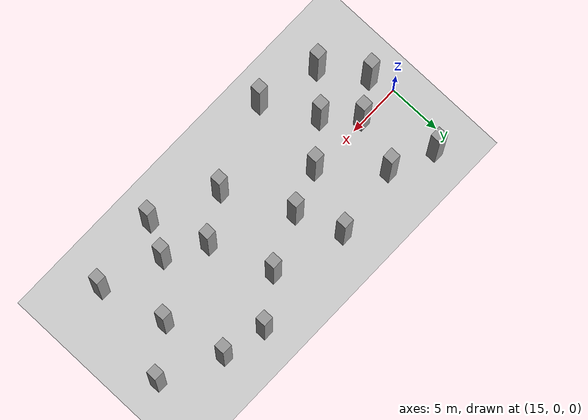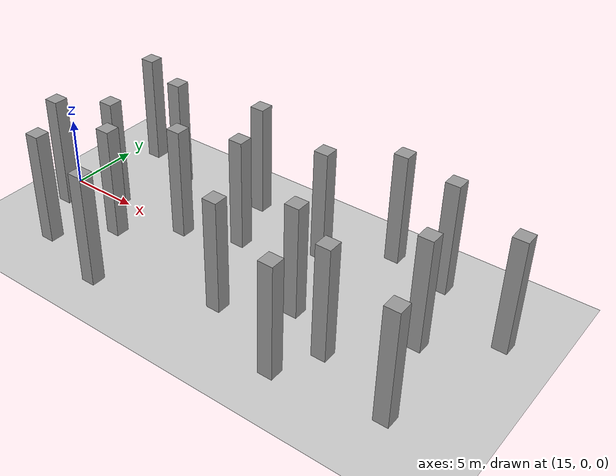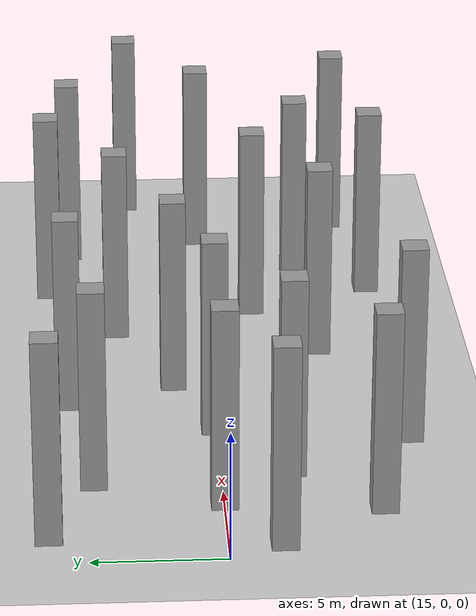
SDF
<sdf version="1.7">
 <world name="default">
  <model name="ground_plane">
   <static>1</static>
   <link name="link">
    <collision name="collision">
     <geometry><plane><normal>0 0 1</normal><size>100 100</size></plane></geometry>
     <surface>
      <contact><collide_bitmask>65535</collide_bitmask></contact>
      <friction><ode><mu>100</mu><mu2>50</mu2></ode></friction>
     </surface>
    </collision>
    <visual name="visual">
     <cast_shadows>0</cast_shadows>
     <geometry><plane><normal>0 0 1</normal><size>100 100</size></plane></geometry>
     <material>
      <script><uri>file://media/materials/scripts/gazebo.material</uri><name>Gazebo/Grey</name></script>
     </material>
    </visual>
   </link>
  </model>
  <model name="unit_box_static42_clone_35">
   <link name="link">
    <inertial>
     <mass>1</mass>
     <inertia>
      <ixx>0.166667</ixx>
      <ixy>0</ixy>
      <ixz>0</ixz>
      <iyy>0.166667</iyy>
      <iyz>0</iyz>
      <izz>0.166667</izz>
     </inertia>
    </inertial>
    <visual name="visual">
     <geometry><box><size>1 1 8</size></box></geometry>
     <material>
      <script><name>Gazebo/Grey</name><uri>file://media/materials/scripts/gazebo.material</uri></script>
      <shader type="pixel"/>
     </material>
    </visual>
    <collision name="collision">
     <geometry><box><size>1 1 8</size></box></geometry>
     <surface>
      <friction>
       <ode><mu>1</mu><mu2>1</mu2><fdir1>0 0 0</fdir1><slip1>0</slip1><slip2>0</slip2></ode>
       <torsional>
        <coefficient>1</coefficient>
        <patch_radius>0</patch_radius>
        <surface_radius>0</surface_radius>
        <use_patch_radius>1</use_patch_radius>
        <ode><slip>0</slip></ode>
       </torsional>
      </friction>
      <bounce><restitution_coefficient>0</restitution_coefficient><threshold>1e+06</threshold></bounce>
      <contact>
       <collide_without_contact>0</collide_without_contact>
       <collide_without_contact_bitmask>1</collide_without_contact_bitmask>
       <collide_bitmask>1</collide_bitmask>
       <ode>
        <soft_cfm>0</soft_cfm>
        <soft_erp>0.2</soft_erp>
        <kp>1e+13</kp>
        <kd>1</kd>
        <max_vel>0.01</max_vel>
        <min_depth>0</min_depth>
       </ode>
       <bullet>
        <split_impulse>1</split_impulse>
        <split_impulse_penetration_threshold>-0.01</split_impulse_penetration_threshold>
        <soft_cfm>0</soft_cfm>
        <soft_erp>0.2</soft_erp>
        <kp>1e+13</kp>
        <kd>1</kd>
       </bullet>
      </contact>
     </surface>
    </collision>
   </link>
   <static>1</static>
   <pose>34 3.66737 4 0 -0 0</pose>
  </model>
  <model name="unit_box_static42_clone_35_clone">
   <link name="link">
    <inertial>
     <mass>1</mass>
     <inertia>
      <ixx>0.166667</ixx>
      <ixy>0</ixy>
      <ixz>0</ixz>
      <iyy>0.166667</iyy>
      <iyz>0</iyz>
      <izz>0.166667</izz>
     </inertia>
    </inertial>
    <visual name="visual">
     <geometry><box><size>1 1 8</size></box></geometry>
     <material>
      <script><name>Gazebo/Grey</name><uri>file://media/materials/scripts/gazebo.material</uri></script>
      <shader type="pixel"/>
     </material>
    </visual>
    <collision name="collision">
     <geometry><box><size>1 1 8</size></box></geometry>
     <surface>
      <friction>
       <ode><mu>1</mu><mu2>1</mu2><fdir1>0 0 0</fdir1><slip1>0</slip1><slip2>0</slip2></ode>
       <torsional>
        <coefficient>1</coefficient>
        <patch_radius>0</patch_radius>
        <surface_radius>0</surface_radius>
        <use_patch_radius>1</use_patch_radius>
        <ode><slip>0</slip></ode>
       </torsional>
      </friction>
      <bounce><restitution_coefficient>0</restitution_coefficient><threshold>1e+06</threshold></bounce>
      <contact>
       <collide_without_contact>0</collide_without_contact>
       <collide_without_contact_bitmask>1</collide_without_contact_bitmask>
       <collide_bitmask>1</collide_bitmask>
       <ode>
        <soft_cfm>0</soft_cfm>
        <soft_erp>0.2</soft_erp>
        <kp>1e+13</kp>
        <kd>1</kd>
        <max_vel>0.01</max_vel>
        <min_depth>0</min_depth>
       </ode>
       <bullet>
        <split_impulse>1</split_impulse>
        <split_impulse_penetration_threshold>-0.01</split_impulse_penetration_threshold>
        <soft_cfm>0</soft_cfm>
        <soft_erp>0.2</soft_erp>
        <kp>1e+13</kp>
        <kd>1</kd>
       </bullet>
      </contact>
     </surface>
    </collision>
   </link>
   <static>1</static>
   <pose>43.4038 0 4 0 -0 0</pose>
  </model>
  <model name="unit_box_static42_clone_35_clone_3">
   <link name="link">
    <inertial>
     <mass>1</mass>
     <inertia>
      <ixx>0.166667</ixx>
      <ixy>0</ixy>
      <ixz>0</ixz>
      <iyy>0.166667</iyy>
      <iyz>0</iyz>
      <izz>0.166667</izz>
     </inertia>
    </inertial>
    <visual name="visual">
     <geometry><box><size>1 1 8</size></box></geometry>
     <material>
      <script><name>Gazebo/Grey</name><uri>file://media/materials/scripts/gazebo.material</uri></script>
      <shader type="pixel"/>
     </material>
    </visual>
    <collision name="collision">
     <geometry><box><size>1 1 8</size></box></geometry>
     <surface>
      <friction>
       <ode><mu>1</mu><mu2>1</mu2><fdir1>0 0 0</fdir1><slip1>0</slip1><slip2>0</slip2></ode>
       <torsional>
        <coefficient>1</coefficient>
        <patch_radius>0</patch_radius>
        <surface_radius>0</surface_radius>
        <use_patch_radius>1</use_patch_radius>
        <ode><slip>0</slip></ode>
       </torsional>
      </friction>
      <bounce><restitution_coefficient>0</restitution_coefficient><threshold>1e+06</threshold></bounce>
      <contact>
       <collide_without_contact>0</collide_without_contact>
       <collide_without_contact_bitmask>1</collide_without_contact_bitmask>
       <collide_bitmask>1</collide_bitmask>
       <ode>
        <soft_cfm>0</soft_cfm>
        <soft_erp>0.2</soft_erp>
        <kp>1e+13</kp>
        <kd>1</kd>
        <max_vel>0.01</max_vel>
        <min_depth>0</min_depth>
       </ode>
       <bullet>
        <split_impulse>1</split_impulse>
        <split_impulse_penetration_threshold>-0.01</split_impulse_penetration_threshold>
        <soft_cfm>0</soft_cfm>
        <soft_erp>0.2</soft_erp>
        <kp>1e+13</kp>
        <kd>1</kd>
       </bullet>
      </contact>
     </surface>
    </collision>
   </link>
   <static>1</static>
   <pose>29 1.50785 4 0 -0 0</pose>
  </model>
  <model name="unit_box_static42_clone_35_clone_4">
   <link name="link">
    <inertial>
     <mass>1</mass>
     <inertia>
      <ixx>0.166667</ixx>
      <ixy>0</ixy>
      <ixz>0</ixz>
      <iyy>0.166667</iyy>
      <iyz>0</iyz>
      <izz>0.166667</izz>
     </inertia>
    </inertial>
    <visual name="visual">
     <geometry><box><size>1 1 8</size></box></geometry>
     <material>
      <script><name>Gazebo/Grey</name><uri>file://media/materials/scripts/gazebo.material</uri></script>
      <shader type="pixel"/>
     </material>
    </visual>
    <collision name="collision">
     <geometry><box><size>1 1 8</size></box></geometry>
     <surface>
      <friction>
       <ode><mu>1</mu><mu2>1</mu2><fdir1>0 0 0</fdir1><slip1>0</slip1><slip2>0</slip2></ode>
       <torsional>
        <coefficient>1</coefficient>
        <patch_radius>0</patch_radius>
        <surface_radius>0</surface_radius>
        <use_patch_radius>1</use_patch_radius>
        <ode><slip>0</slip></ode>
       </torsional>
      </friction>
      <bounce><restitution_coefficient>0</restitution_coefficient><threshold>1e+06</threshold></bounce>
      <contact>
       <collide_without_contact>0</collide_without_contact>
       <collide_without_contact_bitmask>1</collide_without_contact_bitmask>
       <collide_bitmask>1</collide_bitmask>
       <ode>
        <soft_cfm>0</soft_cfm>
        <soft_erp>0.2</soft_erp>
        <kp>1e+13</kp>
        <kd>1</kd>
        <max_vel>0.01</max_vel>
        <min_depth>0</min_depth>
       </ode>
       <bullet>
        <split_impulse>1</split_impulse>
        <split_impulse_penetration_threshold>-0.01</split_impulse_penetration_threshold>
        <soft_cfm>0</soft_cfm>
        <soft_erp>0.2</soft_erp>
        <kp>1e+13</kp>
        <kd>1</kd>
       </bullet>
      </contact>
     </surface>
    </collision>
   </link>
   <static>1</static>
   <pose>20.8184 4.75792 4 0 -0 0</pose>
  </model>
  <model name="unit_box_static42_clone_35_clone_5">
   <link name="link">
    <inertial>
     <mass>1</mass>
     <inertia>
      <ixx>0.166667</ixx>
      <ixy>0</ixy>
      <ixz>0</ixz>
      <iyy>0.166667</iyy>
      <iyz>0</iyz>
      <izz>0.166667</izz>
     </inertia>
    </inertial>
    <visual name="visual">
     <geometry><box><size>1 1 8</size></box></geometry>
     <material>
      <script><name>Gazebo/Grey</name><uri>file://media/materials/scripts/gazebo.material</uri></script>
      <shader type="pixel"/>
     </material>
    </visual>
    <collision name="collision">
     <geometry><box><size>1 1 8</size></box></geometry>
     <surface>
      <friction>
       <ode><mu>1</mu><mu2>1</mu2><fdir1>0 0 0</fdir1><slip1>0</slip1><slip2>0</slip2></ode>
       <torsional>
        <coefficient>1</coefficient>
        <patch_radius>0</patch_radius>
        <surface_radius>0</surface_radius>
        <use_patch_radius>1</use_patch_radius>
        <ode><slip>0</slip></ode>
       </torsional>
      </friction>
      <bounce><restitution_coefficient>0</restitution_coefficient><threshold>1e+06</threshold></bounce>
      <contact>
       <collide_without_contact>0</collide_without_contact>
       <collide_without_contact_bitmask>1</collide_without_contact_bitmask>
       <collide_bitmask>1</collide_bitmask>
       <ode>
        <soft_cfm>0</soft_cfm>
        <soft_erp>0.2</soft_erp>
        <kp>1e+13</kp>
        <kd>1</kd>
        <max_vel>0.01</max_vel>
        <min_depth>0</min_depth>
       </ode>
       <bullet>
        <split_impulse>1</split_impulse>
        <split_impulse_penetration_threshold>-0.01</split_impulse_penetration_threshold>
        <soft_cfm>0</soft_cfm>
        <soft_erp>0.2</soft_erp>
        <kp>1e+13</kp>
        <kd>1</kd>
       </bullet>
      </contact>
     </surface>
    </collision>
   </link>
   <static>1</static>
   <pose>27.4567 5.65529 4 0 -0 0</pose>
  </model>
  <model name="unit_box_static42_clone_35_clone_6">
   <link name="link">
    <inertial>
     <mass>1</mass>
     <inertia>
      <ixx>0.166667</ixx>
      <ixy>0</ixy>
      <ixz>0</ixz>
      <iyy>0.166667</iyy>
      <iyz>0</iyz>
      <izz>0.166667</izz>
     </inertia>
    </inertial>
    <visual name="visual">
     <geometry><box><size>1 1 8</size></box></geometry>
     <material>
      <script><name>Gazebo/Grey</name><uri>file://media/materials/scripts/gazebo.material</uri></script>
      <shader type="pixel"/>
     </material>
    </visual>
    <collision name="collision">
     <geometry><box><size>1 1 8</size></box></geometry>
     <surface>
      <friction>
       <ode><mu>1</mu><mu2>1</mu2><fdir1>0 0 0</fdir1><slip1>0</slip1><slip2>0</slip2></ode>
       <torsional>
        <coefficient>1</coefficient>
        <patch_radius>0</patch_radius>
        <surface_radius>0</surface_radius>
        <use_patch_radius>1</use_patch_radius>
        <ode><slip>0</slip></ode>
       </torsional>
      </friction>
      <bounce><restitution_coefficient>0</restitution_coefficient><threshold>1e+06</threshold></bounce>
      <contact>
       <collide_without_contact>0</collide_without_contact>
       <collide_without_contact_bitmask>1</collide_without_contact_bitmask>
       <collide_bitmask>1</collide_bitmask>
       <ode>
        <soft_cfm>0</soft_cfm>
        <soft_erp>0.2</soft_erp>
        <kp>1e+13</kp>
        <kd>1</kd>
        <max_vel>0.01</max_vel>
        <min_depth>0</min_depth>
       </ode>
       <bullet>
        <split_impulse>1</split_impulse>
        <split_impulse_penetration_threshold>-0.01</split_impulse_penetration_threshold>
        <soft_cfm>0</soft_cfm>
        <soft_erp>0.2</soft_erp>
        <kp>1e+13</kp>
        <kd>1</kd>
       </bullet>
      </contact>
     </surface>
    </collision>
   </link>
   <static>1</static>
   <pose>25.0852 0.07012 4 0 -0 0</pose>
  </model>
  <model name="unit_box_static42_clone_35_clone_7">
   <link name="link">
    <inertial>
     <mass>1</mass>
     <inertia>
      <ixx>0.166667</ixx>
      <ixy>0</ixy>
      <ixz>0</ixz>
      <iyy>0.166667</iyy>
      <iyz>0</iyz>
      <izz>0.166667</izz>
     </inertia>
    </inertial>
    <visual name="visual">
     <geometry><box><size>1 1 8</size></box></geometry>
     <material>
      <script><name>Gazebo/Grey</name><uri>file://media/materials/scripts/gazebo.material</uri></script>
      <shader type="pixel"/>
     </material>
    </visual>
    <collision name="collision">
     <geometry><box><size>1 1 8</size></box></geometry>
     <surface>
      <friction>
       <ode><mu>1</mu><mu2>1</mu2><fdir1>0 0 0</fdir1><slip1>0</slip1><slip2>0</slip2></ode>
       <torsional>
        <coefficient>1</coefficient>
        <patch_radius>0</patch_radius>
        <surface_radius>0</surface_radius>
        <use_patch_radius>1</use_patch_radius>
        <ode><slip>0</slip></ode>
       </torsional>
      </friction>
      <bounce><restitution_coefficient>0</restitution_coefficient><threshold>1e+06</threshold></bounce>
      <contact>
       <collide_without_contact>0</collide_without_contact>
       <collide_without_contact_bitmask>1</collide_without_contact_bitmask>
       <collide_bitmask>1</collide_bitmask>
       <ode>
        <soft_cfm>0</soft_cfm>
        <soft_erp>0.2</soft_erp>
        <kp>1e+13</kp>
        <kd>1</kd>
        <max_vel>0.01</max_vel>
        <min_depth>0</min_depth>
       </ode>
       <bullet>
        <split_impulse>1</split_impulse>
        <split_impulse_penetration_threshold>-0.01</split_impulse_penetration_threshold>
        <soft_cfm>0</soft_cfm>
        <soft_erp>0.2</soft_erp>
        <kp>1e+13</kp>
        <kd>1</kd>
       </bullet>
      </contact>
     </surface>
    </collision>
   </link>
   <static>1</static>
   <pose>32 -4.45157 4 0 -0 0</pose>
  </model>
  <model name="unit_box_static42_clone_35_clone_8">
   <link name="link">
    <inertial>
     <mass>1</mass>
     <inertia>
      <ixx>0.166667</ixx>
      <ixy>0</ixy>
      <ixz>0</ixz>
      <iyy>0.166667</iyy>
      <iyz>0</iyz>
      <izz>0.166667</izz>
     </inertia>
    </inertial>
    <visual name="visual">
     <geometry><box><size>1 1 8</size></box></geometry>
     <material>
      <script><name>Gazebo/Grey</name><uri>file://media/materials/scripts/gazebo.material</uri></script>
      <shader type="pixel"/>
     </material>
    </visual>
    <collision name="collision">
     <geometry><box><size>1 1 8</size></box></geometry>
     <surface>
      <friction>
       <ode><mu>1</mu><mu2>1</mu2><fdir1>0 0 0</fdir1><slip1>0</slip1><slip2>0</slip2></ode>
       <torsional>
        <coefficient>1</coefficient>
        <patch_radius>0</patch_radius>
        <surface_radius>0</surface_radius>
        <use_patch_radius>1</use_patch_radius>
        <ode><slip>0</slip></ode>
       </torsional>
      </friction>
      <bounce><restitution_coefficient>0</restitution_coefficient><threshold>1e+06</threshold></bounce>
      <contact>
       <collide_without_contact>0</collide_without_contact>
       <collide_without_contact_bitmask>1</collide_without_contact_bitmask>
       <collide_bitmask>1</collide_bitmask>
       <ode>
        <soft_cfm>0</soft_cfm>
        <soft_erp>0.2</soft_erp>
        <kp>1e+13</kp>
        <kd>1</kd>
        <max_vel>0.01</max_vel>
        <min_depth>0</min_depth>
       </ode>
       <bullet>
        <split_impulse>1</split_impulse>
        <split_impulse_penetration_threshold>-0.01</split_impulse_penetration_threshold>
        <soft_cfm>0</soft_cfm>
        <soft_erp>0.2</soft_erp>
        <kp>1e+13</kp>
        <kd>1</kd>
       </bullet>
      </contact>
     </surface>
    </collision>
   </link>
   <static>1</static>
   <pose>36 -2 4 0 -0 0</pose>
  </model>
  <model name="unit_box_static42_clone_35_clone_9">
   <link name="link">
    <inertial>
     <mass>1</mass>
     <inertia>
      <ixx>0.166667</ixx>
      <ixy>0</ixy>
      <ixz>0</ixz>
      <iyy>0.166667</iyy>
      <iyz>0</iyz>
      <izz>0.166667</izz>
     </inertia>
    </inertial>
    <visual name="visual">
     <geometry><box><size>1 1 8</size></box></geometry>
     <material>
      <script><name>Gazebo/Grey</name><uri>file://media/materials/scripts/gazebo.material</uri></script>
      <shader type="pixel"/>
     </material>
    </visual>
    <collision name="collision">
     <geometry><box><size>1 1 8</size></box></geometry>
     <surface>
      <friction>
       <ode><mu>1</mu><mu2>1</mu2><fdir1>0 0 0</fdir1><slip1>0</slip1><slip2>0</slip2></ode>
       <torsional>
        <coefficient>1</coefficient>
        <patch_radius>0</patch_radius>
        <surface_radius>0</surface_radius>
        <use_patch_radius>1</use_patch_radius>
        <ode><slip>0</slip></ode>
       </torsional>
      </friction>
      <bounce><restitution_coefficient>0</restitution_coefficient><threshold>1e+06</threshold></bounce>
      <contact>
       <collide_without_contact>0</collide_without_contact>
       <collide_without_contact_bitmask>1</collide_without_contact_bitmask>
       <collide_bitmask>1</collide_bitmask>
       <ode>
        <soft_cfm>0</soft_cfm>
        <soft_erp>0.2</soft_erp>
        <kp>1e+13</kp>
        <kd>1</kd>
        <max_vel>0.01</max_vel>
        <min_depth>0</min_depth>
       </ode>
       <bullet>
        <split_impulse>1</split_impulse>
        <split_impulse_penetration_threshold>-0.01</split_impulse_penetration_threshold>
        <soft_cfm>0</soft_cfm>
        <soft_erp>0.2</soft_erp>
        <kp>1e+13</kp>
        <kd>1</kd>
       </bullet>
      </contact>
     </surface>
    </collision>
   </link>
   <static>1</static>
   <pose>38 -7 4 0 -0 0</pose>
  </model>
  <model name="unit_box_static42_clone_35_clone_10">
   <link name="link">
    <inertial>
     <mass>1</mass>
     <inertia>
      <ixx>0.166667</ixx>
      <ixy>0</ixy>
      <ixz>0</ixz>
      <iyy>0.166667</iyy>
      <iyz>0</iyz>
      <izz>0.166667</izz>
     </inertia>
    </inertial>
    <visual name="visual">
     <geometry><box><size>1 1 8</size></box></geometry>
     <material>
      <script><name>Gazebo/Grey</name><uri>file://media/materials/scripts/gazebo.material</uri></script>
      <shader type="pixel"/>
     </material>
    </visual>
    <collision name="collision">
     <geometry><box><size>1 1 8</size></box></geometry>
     <surface>
      <friction>
       <ode><mu>1</mu><mu2>1</mu2><fdir1>0 0 0</fdir1><slip1>0</slip1><slip2>0</slip2></ode>
       <torsional>
        <coefficient>1</coefficient>
        <patch_radius>0</patch_radius>
        <surface_radius>0</surface_radius>
        <use_patch_radius>1</use_patch_radius>
        <ode><slip>0</slip></ode>
       </torsional>
      </friction>
      <bounce><restitution_coefficient>0</restitution_coefficient><threshold>1e+06</threshold></bounce>
      <contact>
       <collide_without_contact>0</collide_without_contact>
       <collide_without_contact_bitmask>1</collide_without_contact_bitmask>
       <collide_bitmask>1</collide_bitmask>
       <ode>
        <soft_cfm>0</soft_cfm>
        <soft_erp>0.2</soft_erp>
        <kp>1e+13</kp>
        <kd>1</kd>
        <max_vel>0.01</max_vel>
        <min_depth>0</min_depth>
       </ode>
       <bullet>
        <split_impulse>1</split_impulse>
        <split_impulse_penetration_threshold>-0.01</split_impulse_penetration_threshold>
        <soft_cfm>0</soft_cfm>
        <soft_erp>0.2</soft_erp>
        <kp>1e+13</kp>
        <kd>1</kd>
       </bullet>
      </contact>
     </surface>
    </collision>
   </link>
   <static>1</static>
   <pose>18.5122 -5.82214 4 0 -0 0</pose>
  </model>
  <model name="unit_box_static42_clone_35_clone_13">
   <link name="link">
    <inertial>
     <mass>1</mass>
     <inertia>
      <ixx>0.166667</ixx>
      <ixy>0</ixy>
      <ixz>0</ixz>
      <iyy>0.166667</iyy>
      <iyz>0</iyz>
      <izz>0.166667</izz>
     </inertia>
    </inertial>
    <visual name="visual">
     <geometry><box><size>1 1 8</size></box></geometry>
     <material>
      <script><name>Gazebo/Grey</name><uri>file://media/materials/scripts/gazebo.material</uri></script>
      <shader type="pixel"/>
     </material>
    </visual>
    <collision name="collision">
     <geometry><box><size>1 1 8</size></box></geometry>
     <surface>
      <friction>
       <ode><mu>1</mu><mu2>1</mu2><fdir1>0 0 0</fdir1><slip1>0</slip1><slip2>0</slip2></ode>
       <torsional>
        <coefficient>1</coefficient>
        <patch_radius>0</patch_radius>
        <surface_radius>0</surface_radius>
        <use_patch_radius>1</use_patch_radius>
        <ode><slip>0</slip></ode>
       </torsional>
      </friction>
      <bounce><restitution_coefficient>0</restitution_coefficient><threshold>1e+06</threshold></bounce>
      <contact>
       <collide_without_contact>0</collide_without_contact>
       <collide_without_contact_bitmask>1</collide_without_contact_bitmask>
       <collide_bitmask>1</collide_bitmask>
       <ode>
        <soft_cfm>0</soft_cfm>
        <soft_erp>0.2</soft_erp>
        <kp>1e+13</kp>
        <kd>1</kd>
        <max_vel>0.01</max_vel>
        <min_depth>0</min_depth>
       </ode>
       <bullet>
        <split_impulse>1</split_impulse>
        <split_impulse_penetration_threshold>-0.01</split_impulse_penetration_threshold>
        <soft_cfm>0</soft_cfm>
        <soft_erp>0.2</soft_erp>
        <kp>1e+13</kp>
        <kd>1</kd>
       </bullet>
      </contact>
     </surface>
    </collision>
   </link>
   <static>1</static>
   <pose>19.096 0 4 0 -0 0</pose>
  </model>
  <model name="unit_box_static42_clone_35_clone_47">
   <link name="link">
    <inertial>
     <mass>1</mass>
     <inertia>
      <ixx>0.166667</ixx>
      <ixy>0</ixy>
      <ixz>0</ixz>
      <iyy>0.166667</iyy>
      <iyz>0</iyz>
      <izz>0.166667</izz>
     </inertia>
    </inertial>
    <visual name="visual">
     <geometry><box><size>1 1 8</size></box></geometry>
     <material>
      <script><name>Gazebo/Grey</name><uri>file://media/materials/scripts/gazebo.material</uri></script>
      <shader type="pixel"/>
     </material>
    </visual>
    <collision name="collision">
     <geometry><box><size>1 1 8</size></box></geometry>
     <surface>
      <friction>
       <ode><mu>1</mu><mu2>1</mu2><fdir1>0 0 0</fdir1><slip1>0</slip1><slip2>0</slip2></ode>
       <torsional>
        <coefficient>1</coefficient>
        <patch_radius>0</patch_radius>
        <surface_radius>0</surface_radius>
        <use_patch_radius>1</use_patch_radius>
        <ode><slip>0</slip></ode>
       </torsional>
      </friction>
      <bounce><restitution_coefficient>0</restitution_coefficient><threshold>1e+06</threshold></bounce>
      <contact>
       <collide_without_contact>0</collide_without_contact>
       <collide_without_contact_bitmask>1</collide_without_contact_bitmask>
       <collide_bitmask>1</collide_bitmask>
       <ode>
        <soft_cfm>0</soft_cfm>
        <soft_erp>0.2</soft_erp>
        <kp>1e+13</kp>
        <kd>1</kd>
        <max_vel>0.01</max_vel>
        <min_depth>0</min_depth>
       </ode>
       <bullet>
        <split_impulse>1</split_impulse>
        <split_impulse_penetration_threshold>-0.01</split_impulse_penetration_threshold>
        <soft_cfm>0</soft_cfm>
        <soft_erp>0.2</soft_erp>
        <kp>1e+13</kp>
        <kd>1</kd>
       </bullet>
      </contact>
     </surface>
    </collision>
   </link>
   <static>1</static>
   <pose>24.0746 -7.35029 4 0 -0 0</pose>
  </model>
  <model name="unit_box_static42_clone_35_clone_48">
   <link name="link">
    <inertial>
     <mass>1</mass>
     <inertia>
      <ixx>0.166667</ixx>
      <ixy>0</ixy>
      <ixz>0</ixz>
      <iyy>0.166667</iyy>
      <iyz>0</iyz>
      <izz>0.166667</izz>
     </inertia>
    </inertial>
    <visual name="visual">
     <geometry><box><size>1 1 8</size></box></geometry>
     <material>
      <script><name>Gazebo/Grey</name><uri>file://media/materials/scripts/gazebo.material</uri></script>
      <shader type="pixel"/>
     </material>
    </visual>
    <collision name="collision">
     <geometry><box><size>1 1 8</size></box></geometry>
     <surface>
      <friction>
       <ode><mu>1</mu><mu2>1</mu2><fdir1>0 0 0</fdir1><slip1>0</slip1><slip2>0</slip2></ode>
       <torsional>
        <coefficient>1</coefficient>
        <patch_radius>0</patch_radius>
        <surface_radius>0</surface_radius>
        <use_patch_radius>1</use_patch_radius>
        <ode><slip>0</slip></ode>
       </torsional>
      </friction>
      <bounce><restitution_coefficient>0</restitution_coefficient><threshold>1e+06</threshold></bounce>
      <contact>
       <collide_without_contact>0</collide_without_contact>
       <collide_without_contact_bitmask>1</collide_without_contact_bitmask>
       <collide_bitmask>1</collide_bitmask>
       <ode>
        <soft_cfm>0</soft_cfm>
        <soft_erp>0.2</soft_erp>
        <kp>1e+13</kp>
        <kd>1</kd>
        <max_vel>0.01</max_vel>
        <min_depth>0</min_depth>
       </ode>
       <bullet>
        <split_impulse>1</split_impulse>
        <split_impulse_penetration_threshold>-0.01</split_impulse_penetration_threshold>
        <soft_cfm>0</soft_cfm>
        <soft_erp>0.2</soft_erp>
        <kp>1e+13</kp>
        <kd>1</kd>
       </bullet>
      </contact>
     </surface>
    </collision>
   </link>
   <static>1</static>
   <pose>16 -2 4 0 -0 0</pose>
  </model>
  <model name="unit_box_static42_clone_35_clone_1">
   <link name="link">
    <inertial>
     <mass>1</mass>
     <inertia>
      <ixx>0.166667</ixx>
      <ixy>0</ixy>
      <ixz>0</ixz>
      <iyy>0.166667</iyy>
      <iyz>0</iyz>
      <izz>0.166667</izz>
     </inertia>
    </inertial>
    <visual name="visual">
     <geometry><box><size>1 1 8</size></box></geometry>
     <material>
      <script><name>Gazebo/Grey</name><uri>file://media/materials/scripts/gazebo.material</uri></script>
      <shader type="pixel"/>
     </material>
    </visual>
    <collision name="collision">
     <geometry><box><size>1 1 8</size></box></geometry>
     <surface>
      <friction>
       <ode><mu>1</mu><mu2>1</mu2><fdir1>0 0 0</fdir1><slip1>0</slip1><slip2>0</slip2></ode>
       <torsional>
        <coefficient>1</coefficient>
        <patch_radius>0</patch_radius>
        <surface_radius>0</surface_radius>
        <use_patch_radius>1</use_patch_radius>
        <ode><slip>0</slip></ode>
       </torsional>
      </friction>
      <bounce><restitution_coefficient>0</restitution_coefficient><threshold>1e+06</threshold></bounce>
      <contact>
       <collide_without_contact>0</collide_without_contact>
       <collide_without_contact_bitmask>1</collide_without_contact_bitmask>
       <collide_bitmask>1</collide_bitmask>
       <ode>
        <soft_cfm>0</soft_cfm>
        <soft_erp>0.2</soft_erp>
        <kp>1e+13</kp>
        <kd>1</kd>
        <max_vel>0.01</max_vel>
        <min_depth>0</min_depth>
       </ode>
       <bullet>
        <split_impulse>1</split_impulse>
        <split_impulse_penetration_threshold>-0.01</split_impulse_penetration_threshold>
        <soft_cfm>0</soft_cfm>
        <soft_erp>0.2</soft_erp>
        <kp>1e+13</kp>
        <kd>1</kd>
       </bullet>
      </contact>
     </surface>
    </collision>
   </link>
   <static>1</static>
   <pose>38 6.4214 4 0 -0 0</pose>
  </model>
  <model name="unit_box_static42_clone_35_clone_11">
   <link name="link">
    <inertial>
     <mass>1</mass>
     <inertia>
      <ixx>0.166667</ixx>
      <ixy>0</ixy>
      <ixz>0</ixz>
      <iyy>0.166667</iyy>
      <iyz>0</iyz>
      <izz>0.166667</izz>
     </inertia>
    </inertial>
    <visual name="visual">
     <geometry><box><size>1 1 8</size></box></geometry>
     <material>
      <script><name>Gazebo/Grey</name><uri>file://media/materials/scripts/gazebo.material</uri></script>
      <shader type="pixel"/>
     </material>
    </visual>
    <collision name="collision">
     <geometry><box><size>1 1 8</size></box></geometry>
     <surface>
      <friction>
       <ode><mu>1</mu><mu2>1</mu2><fdir1>0 0 0</fdir1><slip1>0</slip1><slip2>0</slip2></ode>
       <torsional>
        <coefficient>1</coefficient>
        <patch_radius>0</patch_radius>
        <surface_radius>0</surface_radius>
        <use_patch_radius>1</use_patch_radius>
        <ode><slip>0</slip></ode>
       </torsional>
      </friction>
      <bounce><restitution_coefficient>0</restitution_coefficient><threshold>1e+06</threshold></bounce>
      <contact>
       <collide_without_contact>0</collide_without_contact>
       <collide_without_contact_bitmask>1</collide_without_contact_bitmask>
       <collide_bitmask>1</collide_bitmask>
       <ode>
        <soft_cfm>0</soft_cfm>
        <soft_erp>0.2</soft_erp>
        <kp>1e+13</kp>
        <kd>1</kd>
        <max_vel>0.01</max_vel>
        <min_depth>0</min_depth>
       </ode>
       <bullet>
        <split_impulse>1</split_impulse>
        <split_impulse_penetration_threshold>-0.01</split_impulse_penetration_threshold>
        <soft_cfm>0</soft_cfm>
        <soft_erp>0.2</soft_erp>
        <kp>1e+13</kp>
        <kd>1</kd>
       </bullet>
      </contact>
     </surface>
    </collision>
   </link>
   <static>1</static>
   <pose>42 5.5359 4 0 -0 0</pose>
  </model>
  <model name="unit_box_static42_clone_35_clone_49">
   <link name="link">
    <inertial>
     <mass>1</mass>
     <inertia>
      <ixx>0.166667</ixx>
      <ixy>0</ixy>
      <ixz>0</ixz>
      <iyy>0.166667</iyy>
      <iyz>0</iyz>
      <izz>0.166667</izz>
     </inertia>
    </inertial>
    <visual name="visual">
     <geometry><box><size>1 1 8</size></box></geometry>
     <material>
      <script><name>Gazebo/Grey</name><uri>file://media/materials/scripts/gazebo.material</uri></script>
      <shader type="pixel"/>
     </material>
    </visual>
    <collision name="collision">
     <geometry><box><size>1 1 8</size></box></geometry>
     <surface>
      <friction>
       <ode><mu>1</mu><mu2>1</mu2><fdir1>0 0 0</fdir1><slip1>0</slip1><slip2>0</slip2></ode>
       <torsional>
        <coefficient>1</coefficient>
        <patch_radius>0</patch_radius>
        <surface_radius>0</surface_radius>
        <use_patch_radius>1</use_patch_radius>
        <ode><slip>0</slip></ode>
       </torsional>
      </friction>
      <bounce><restitution_coefficient>0</restitution_coefficient><threshold>1e+06</threshold></bounce>
      <contact>
       <collide_without_contact>0</collide_without_contact>
       <collide_without_contact_bitmask>1</collide_without_contact_bitmask>
       <collide_bitmask>1</collide_bitmask>
       <ode>
        <soft_cfm>0</soft_cfm>
        <soft_erp>0.2</soft_erp>
        <kp>1e+13</kp>
        <kd>1</kd>
        <max_vel>0.01</max_vel>
        <min_depth>0</min_depth>
       </ode>
       <bullet>
        <split_impulse>1</split_impulse>
        <split_impulse_penetration_threshold>-0.01</split_impulse_penetration_threshold>
        <soft_cfm>0</soft_cfm>
        <soft_erp>0.2</soft_erp>
        <kp>1e+13</kp>
        <kd>1</kd>
       </bullet>
      </contact>
     </surface>
    </collision>
   </link>
   <static>1</static>
   <pose>16.7732 6.42407 4 0 -0 0</pose>
  </model>
  <model name="unit_box_static42_clone_35_clone_0">
   <link name="link">
    <inertial>
     <mass>1</mass>
     <inertia>
      <ixx>0.166667</ixx>
      <ixy>0</ixy>
      <ixz>0</ixz>
      <iyy>0.166667</iyy>
      <iyz>0</iyz>
      <izz>0.166667</izz>
     </inertia>
    </inertial>
    <visual name="visual">
     <geometry><box><size>1 1 8</size></box></geometry>
     <material>
      <script><name>Gazebo/Grey</name><uri>file://media/materials/scripts/gazebo.material</uri></script>
      <shader type="pixel"/>
     </material>
    </visual>
    <collision name="collision">
     <geometry><box><size>1 1 8</size></box></geometry>
     <surface>
      <friction>
       <ode><mu>1</mu><mu2>1</mu2><fdir1>0 0 0</fdir1><slip1>0</slip1><slip2>0</slip2></ode>
       <torsional>
        <coefficient>1</coefficient>
        <patch_radius>0</patch_radius>
        <surface_radius>0</surface_radius>
        <use_patch_radius>1</use_patch_radius>
        <ode><slip>0</slip></ode>
       </torsional>
      </friction>
      <bounce><restitution_coefficient>0</restitution_coefficient><threshold>1e+06</threshold></bounce>
      <contact>
       <collide_without_contact>0</collide_without_contact>
       <collide_without_contact_bitmask>1</collide_without_contact_bitmask>
       <collide_bitmask>1</collide_bitmask>
       <ode>
        <soft_cfm>0</soft_cfm>
        <soft_erp>0.2</soft_erp>
        <kp>1e+13</kp>
        <kd>1</kd>
        <max_vel>0.01</max_vel>
        <min_depth>0</min_depth>
       </ode>
       <bullet>
        <split_impulse>1</split_impulse>
        <split_impulse_penetration_threshold>-0.01</split_impulse_penetration_threshold>
        <soft_cfm>0</soft_cfm>
        <soft_erp>0.2</soft_erp>
        <kp>1e+13</kp>
        <kd>1</kd>
       </bullet>
      </contact>
     </surface>
    </collision>
   </link>
   <static>1</static>
   <pose>39.5332 -4 4 0 -0 0</pose>
  </model>
  <model name="unit_box_static42_clone_35_clone_2">
   <link name="link">
    <inertial>
     <mass>1</mass>
     <inertia>
      <ixx>0.166667</ixx>
      <ixy>0</ixy>
      <ixz>0</ixz>
      <iyy>0.166667</iyy>
      <iyz>0</iyz>
      <izz>0.166667</izz>
     </inertia>
    </inertial>
    <visual name="visual">
     <geometry><box><size>1 1 8</size></box></geometry>
     <material>
      <script><name>Gazebo/Grey</name><uri>file://media/materials/scripts/gazebo.material</uri></script>
      <shader type="pixel"/>
     </material>
    </visual>
    <collision name="collision">
     <geometry><box><size>1 1 8</size></box></geometry>
     <surface>
      <friction>
       <ode><mu>1</mu><mu2>1</mu2><fdir1>0 0 0</fdir1><slip1>0</slip1><slip2>0</slip2></ode>
       <torsional>
        <coefficient>1</coefficient>
        <patch_radius>0</patch_radius>
        <surface_radius>0</surface_radius>
        <use_patch_radius>1</use_patch_radius>
        <ode><slip>0</slip></ode>
       </torsional>
      </friction>
      <bounce><restitution_coefficient>0</restitution_coefficient><threshold>1e+06</threshold></bounce>
      <contact>
       <collide_without_contact>0</collide_without_contact>
       <collide_without_contact_bitmask>1</collide_without_contact_bitmask>
       <collide_bitmask>1</collide_bitmask>
       <ode>
        <soft_cfm>0</soft_cfm>
        <soft_erp>0.2</soft_erp>
        <kp>1e+13</kp>
        <kd>1</kd>
        <max_vel>0.01</max_vel>
        <min_depth>0</min_depth>
       </ode>
       <bullet>
        <split_impulse>1</split_impulse>
        <split_impulse_penetration_threshold>-0.01</split_impulse_penetration_threshold>
        <soft_cfm>0</soft_cfm>
        <soft_erp>0.2</soft_erp>
        <kp>1e+13</kp>
        <kd>1</kd>
       </bullet>
      </contact>
     </surface>
    </collision>
   </link>
   <static>1</static>
   <pose>45 -6 4 0 -0 0</pose>
  </model>
  <model name="unit_box_static42_clone_35_clone_54">
   <link name="link">
    <inertial>
     <mass>1</mass>
     <inertia>
      <ixx>0.166667</ixx>
      <ixy>0</ixy>
      <ixz>0</ixz>
      <iyy>0.166667</iyy>
      <iyz>0</iyz>
      <izz>0.166667</izz>
     </inertia>
    </inertial>
    <visual name="visual">
     <geometry><box><size>1 1 8</size></box></geometry>
     <material>
      <script><name>Gazebo/Grey</name><uri>file://media/materials/scripts/gazebo.material</uri></script>
      <shader type="pixel"/>
     </material>
    </visual>
    <collision name="collision">
     <geometry><box><size>1 1 8</size></box></geometry>
     <surface>
      <friction>
       <ode><mu>1</mu><mu2>1</mu2><fdir1>0 0 0</fdir1><slip1>0</slip1><slip2>0</slip2></ode>
       <torsional>
        <coefficient>1</coefficient>
        <patch_radius>0</patch_radius>
        <surface_radius>0</surface_radius>
        <use_patch_radius>1</use_patch_radius>
        <ode><slip>0</slip></ode>
       </torsional>
      </friction>
      <bounce><restitution_coefficient>0</restitution_coefficient><threshold>1e+06</threshold></bounce>
      <contact>
       <collide_without_contact>0</collide_without_contact>
       <collide_without_contact_bitmask>1</collide_without_contact_bitmask>
       <collide_bitmask>1</collide_bitmask>
       <ode>
        <soft_cfm>0</soft_cfm>
        <soft_erp>0.2</soft_erp>
        <kp>1e+13</kp>
        <kd>1</kd>
        <max_vel>0.01</max_vel>
        <min_depth>0</min_depth>
       </ode>
       <bullet>
        <split_impulse>1</split_impulse>
        <split_impulse_penetration_threshold>-0.01</split_impulse_penetration_threshold>
        <soft_cfm>0</soft_cfm>
        <soft_erp>0.2</soft_erp>
        <kp>1e+13</kp>
        <kd>1</kd>
       </bullet>
      </contact>
     </surface>
    </collision>
   </link>
   <static>1</static>
   <pose>47.4214 3 4 0 -0 0</pose>
  </model>
  <model name="unit_box_static42_clone_35_clone_23_clone_0">
   <link name="link">
    <inertial>
     <mass>1</mass>
     <inertia>
      <ixx>0.166667</ixx>
      <ixy>0</ixy>
      <ixz>0</ixz>
      <iyy>0.166667</iyy>
      <iyz>0</iyz>
      <izz>0.166667</izz>
     </inertia>
    </inertial>
    <visual name="visual">
     <geometry><box><size>1 1 8</size></box></geometry>
     <material>
      <script><name>Gazebo/Grey</name><uri>file://media/materials/scripts/gazebo.material</uri></script>
      <shader type="pixel"/>
     </material>
    </visual>
    <collision name="collision">
     <geometry><box><size>1 1 8</size></box></geometry>
     <surface>
      <friction>
       <ode><mu>1</mu><mu2>1</mu2><fdir1>0 0 0</fdir1><slip1>0</slip1><slip2>0</slip2></ode>
       <torsional>
        <coefficient>1</coefficient>
        <patch_radius>0</patch_radius>
        <surface_radius>0</surface_radius>
        <use_patch_radius>1</use_patch_radius>
        <ode><slip>0</slip></ode>
       </torsional>
      </friction>
      <bounce><restitution_coefficient>0</restitution_coefficient><threshold>1e+06</threshold></bounce>
      <contact>
       <collide_without_contact>0</collide_without_contact>
       <collide_without_contact_bitmask>1</collide_without_contact_bitmask>
       <collide_bitmask>1</collide_bitmask>
       <ode>
        <soft_cfm>0</soft_cfm>
        <soft_erp>0.2</soft_erp>
        <kp>1e+13</kp>
        <kd>1</kd>
        <max_vel>0.01</max_vel>
        <min_depth>0</min_depth>
       </ode>
       <bullet>
        <split_impulse>1</split_impulse>
        <split_impulse_penetration_threshold>-0.01</split_impulse_penetration_threshold>
        <soft_cfm>0</soft_cfm>
        <soft_erp>0.2</soft_erp>
        <kp>1e+13</kp>
        <kd>1</kd>
       </bullet>
      </contact>
     </surface>
    </collision>
   </link>
   <static>1</static>
   <pose>21.539 -2.66713 4 0 -0 0</pose>
  </model>
 </world>
</sdf>
